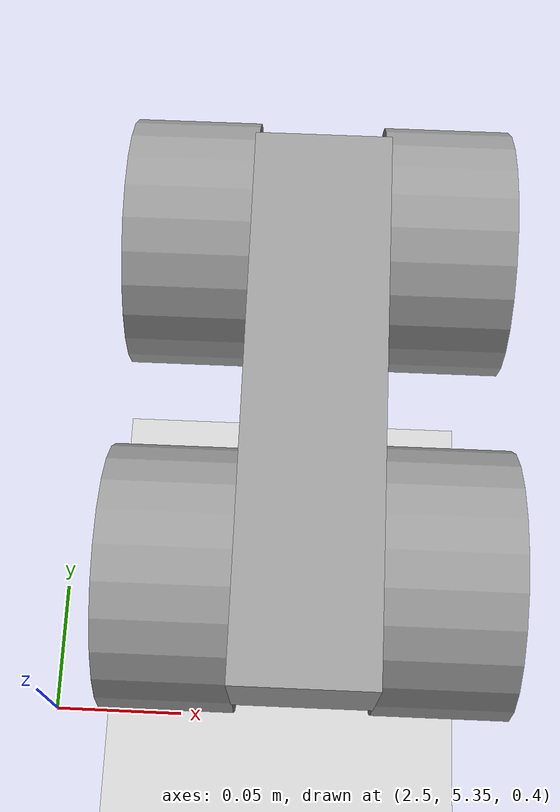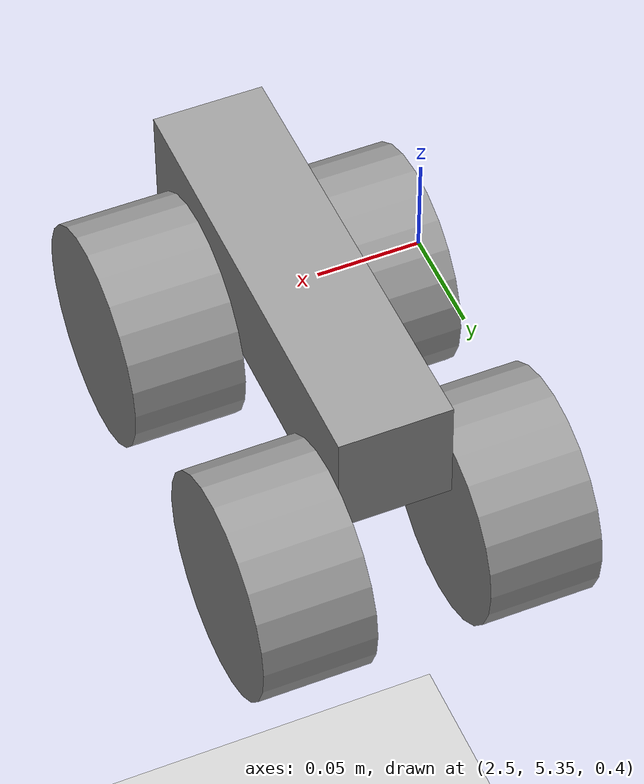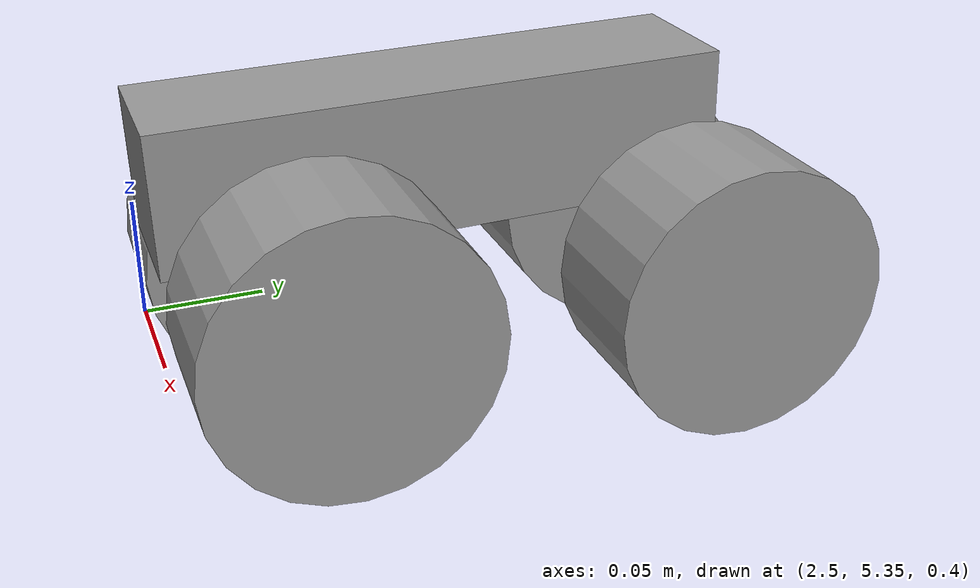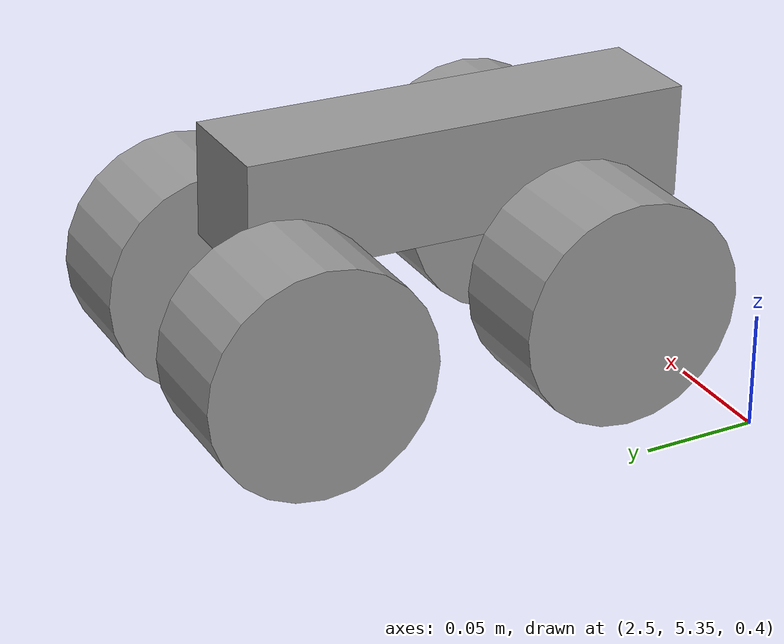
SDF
<sdf version="1.6">
 <world name="default">
  <model name="ground_plane">
   <static>1</static>
   <link name="link">
    <collision name="collision">
     <geometry><plane><normal>0 0 1</normal><size>100 100</size></plane></geometry>
     <surface>
      <contact><collide_bitmask>65535</collide_bitmask></contact>
      <friction><ode><mu>100</mu><mu2>50</mu2></ode></friction>
     </surface>
    </collision>
    <visual name="visual">
     <cast_shadows>0</cast_shadows>
     <geometry><plane><normal>0 0 1</normal><size>100 100</size></plane></geometry>
     <material>
      <script><uri>file://media/materials/scripts/gazebo.material</uri><name>Gazebo/Grey</name></script>
     </material>
    </visual>
   </link>
  </model>
  <model name="oscar_clone">
   <link name="link_1">
    <inertial>
     <mass>1</mass>
     <inertia><ixx>0.145833</ixx><ixy>0</ixy><ixz>0</ixz><iyy>0.145833</iyy><iyz>0</iyz><izz>0.125</izz></inertia>
    </inertial>
    <pose>-0.030984 -0.02472 0.043 0 -1.57079 0</pose>
    <visual name="visual">
     <geometry><cylinder><radius>0.05</radius><length>0.05</length></cylinder></geometry>
     <material>
      <lighting>1</lighting>
      <script><uri>file://media/materials/scripts/gazebo.material</uri><name>Gazebo/Grey</name></script>
      <shader type="pixel"><normal_map>__default__</normal_map></shader>
      <ambient>0.3 0.3 0.3 1</ambient>
      <diffuse>0.7 0.7 0.7 1</diffuse>
      <specular>0.01 0.01 0.01 1</specular>
      <emissive>0 0 0 1</emissive>
     </material>
    </visual>
    <collision name="collision">
     <geometry><cylinder><radius>0.05</radius><length>0.05</length></cylinder></geometry>
     <surface>
      <friction>
       <ode><mu>1</mu><mu2>1</mu2><fdir1>0 0 0</fdir1><slip1>0</slip1><slip2>0</slip2></ode>
       <torsional>
        <coefficient>1</coefficient>
        <patch_radius>0</patch_radius>
        <surface_radius>0</surface_radius>
        <use_patch_radius>1</use_patch_radius>
        <ode><slip>0</slip></ode>
       </torsional>
      </friction>
      <bounce><restitution_coefficient>0</restitution_coefficient><threshold>1e+06</threshold></bounce>
      <contact>
       <collide_without_contact>0</collide_without_contact>
       <collide_without_contact_bitmask>1</collide_without_contact_bitmask>
       <collide_bitmask>1</collide_bitmask>
       <ode>
        <soft_cfm>0</soft_cfm>
        <soft_erp>0.2</soft_erp>
        <kp>1e+13</kp>
        <kd>1</kd>
        <max_vel>0.01</max_vel>
        <min_depth>0</min_depth>
       </ode>
       <bullet>
        <split_impulse>1</split_impulse>
        <split_impulse_penetration_threshold>-0.01</split_impulse_penetration_threshold>
        <soft_cfm>0</soft_cfm>
        <soft_erp>0.2</soft_erp>
        <kp>1e+13</kp>
        <kd>1</kd>
       </bullet>
      </contact>
     </surface>
    </collision>
   </link>
   <link name="link_1_clone">
    <inertial>
     <mass>1</mass>
     <inertia><ixx>0.145833</ixx><ixy>0</ixy><ixz>0</ixz><iyy>0.145833</iyy><iyz>0</iyz><izz>0.125</izz></inertia>
    </inertial>
    <pose>-0.030984 0.115279 0.043 0 -1.57079 0</pose>
    <visual name="visual">
     <geometry><cylinder><radius>0.05</radius><length>0.05</length></cylinder></geometry>
     <material>
      <lighting>1</lighting>
      <script><uri>file://media/materials/scripts/gazebo.material</uri><name>Gazebo/Grey</name></script>
      <shader type="pixel"><normal_map>__default__</normal_map></shader>
      <ambient>0.3 0.3 0.3 1</ambient>
      <diffuse>0.7 0.7 0.7 1</diffuse>
      <specular>0.01 0.01 0.01 1</specular>
      <emissive>0 0 0 1</emissive>
     </material>
    </visual>
    <collision name="collision">
     <geometry><cylinder><radius>0.05</radius><length>0.05</length></cylinder></geometry>
     <surface>
      <friction>
       <ode><mu>1</mu><mu2>1</mu2><fdir1>0 0 0</fdir1><slip1>0</slip1><slip2>0</slip2></ode>
       <torsional>
        <coefficient>1</coefficient>
        <patch_radius>0</patch_radius>
        <surface_radius>0</surface_radius>
        <use_patch_radius>1</use_patch_radius>
        <ode><slip>0</slip></ode>
       </torsional>
      </friction>
      <bounce><restitution_coefficient>0</restitution_coefficient><threshold>1e+06</threshold></bounce>
      <contact>
       <collide_without_contact>0</collide_without_contact>
       <collide_without_contact_bitmask>1</collide_without_contact_bitmask>
       <collide_bitmask>1</collide_bitmask>
       <ode>
        <soft_cfm>0</soft_cfm>
        <soft_erp>0.2</soft_erp>
        <kp>1e+13</kp>
        <kd>1</kd>
        <max_vel>0.01</max_vel>
        <min_depth>0</min_depth>
       </ode>
       <bullet>
        <split_impulse>1</split_impulse>
        <split_impulse_penetration_threshold>-0.01</split_impulse_penetration_threshold>
        <soft_cfm>0</soft_cfm>
        <soft_erp>0.2</soft_erp>
        <kp>1e+13</kp>
        <kd>1</kd>
       </bullet>
      </contact>
     </surface>
    </collision>
   </link>
   <link name="link_2">
    <inertial>
     <mass>1</mass>
     <inertia>
      <ixx>0.166667</ixx>
      <ixy>0</ixy>
      <ixz>0</ixz>
      <iyy>0.166667</iyy>
      <iyz>0</iyz>
      <izz>0.166667</izz>
     </inertia>
     <pose>0 0 0.05 0 -0 0</pose>
    </inertial>
    <pose>0.019016 0.025279 0.093 0 -0 0</pose>
    <visual name="visual">
     <geometry><box><size>0.05 0.2 0.05</size></box></geometry>
     <material>
      <lighting>1</lighting>
      <script><uri>file://media/materials/scripts/gazebo.material</uri><name>Gazebo/Grey</name></script>
      <shader type="pixel"><normal_map>__default__</normal_map></shader>
      <ambient>0.3 0.3 0.3 1</ambient>
      <diffuse>0.7 0.7 0.7 1</diffuse>
      <specular>0.01 0.01 0.01 1</specular>
      <emissive>0 0 0 1</emissive>
     </material>
    </visual>
    <collision name="collision">
     <geometry><box><size>1 1 1</size></box></geometry>
     <surface>
      <friction>
       <ode><mu>1</mu><mu2>1</mu2><fdir1>0 0 0</fdir1><slip1>0</slip1><slip2>0</slip2></ode>
       <torsional>
        <coefficient>1</coefficient>
        <patch_radius>0</patch_radius>
        <surface_radius>0</surface_radius>
        <use_patch_radius>1</use_patch_radius>
        <ode><slip>0</slip></ode>
       </torsional>
      </friction>
      <bounce><restitution_coefficient>0</restitution_coefficient><threshold>1e+06</threshold></bounce>
      <contact>
       <collide_without_contact>0</collide_without_contact>
       <collide_without_contact_bitmask>1</collide_without_contact_bitmask>
       <collide_bitmask>1</collide_bitmask>
       <ode>
        <soft_cfm>0</soft_cfm>
        <soft_erp>0.2</soft_erp>
        <kp>1e+13</kp>
        <kd>1</kd>
        <max_vel>0.01</max_vel>
        <min_depth>0</min_depth>
       </ode>
       <bullet>
        <split_impulse>1</split_impulse>
        <split_impulse_penetration_threshold>-0.01</split_impulse_penetration_threshold>
        <soft_cfm>0</soft_cfm>
        <soft_erp>0.2</soft_erp>
        <kp>1e+13</kp>
        <kd>1</kd>
       </bullet>
      </contact>
     </surface>
    </collision>
   </link>
   <link name="link_3">
    <inertial>
     <mass>1</mass>
     <inertia><ixx>0.145833</ixx><ixy>0</ixy><ixz>0</ixz><iyy>0.145833</iyy><iyz>0</iyz><izz>0.125</izz></inertia>
    </inertial>
    <pose>0.069016 -0.024721 0.053 0 1.5707 0</pose>
    <visual name="visual">
     <geometry><cylinder><radius>0.05</radius><length>0.05</length></cylinder></geometry>
     <material>
      <lighting>1</lighting>
      <script><uri>file://media/materials/scripts/gazebo.material</uri><name>Gazebo/Grey</name></script>
      <shader type="pixel"><normal_map>__default__</normal_map></shader>
      <ambient>0.3 0.3 0.3 1</ambient>
      <diffuse>0.7 0.7 0.7 1</diffuse>
      <specular>0.01 0.01 0.01 1</specular>
      <emissive>0 0 0 1</emissive>
     </material>
    </visual>
    <collision name="collision">
     <geometry><cylinder><radius>0.05</radius><length>0.05</length></cylinder></geometry>
     <surface>
      <friction>
       <ode><mu>1</mu><mu2>1</mu2><fdir1>0 0 0</fdir1><slip1>0</slip1><slip2>0</slip2></ode>
       <torsional>
        <coefficient>1</coefficient>
        <patch_radius>0</patch_radius>
        <surface_radius>0</surface_radius>
        <use_patch_radius>1</use_patch_radius>
        <ode><slip>0</slip></ode>
       </torsional>
      </friction>
      <bounce><restitution_coefficient>0</restitution_coefficient><threshold>1e+06</threshold></bounce>
      <contact>
       <collide_without_contact>0</collide_without_contact>
       <collide_without_contact_bitmask>1</collide_without_contact_bitmask>
       <collide_bitmask>1</collide_bitmask>
       <ode>
        <soft_cfm>0</soft_cfm>
        <soft_erp>0.2</soft_erp>
        <kp>1e+13</kp>
        <kd>1</kd>
        <max_vel>0.01</max_vel>
        <min_depth>0</min_depth>
       </ode>
       <bullet>
        <split_impulse>1</split_impulse>
        <split_impulse_penetration_threshold>-0.01</split_impulse_penetration_threshold>
        <soft_cfm>0</soft_cfm>
        <soft_erp>0.2</soft_erp>
        <kp>1e+13</kp>
        <kd>1</kd>
       </bullet>
      </contact>
     </surface>
    </collision>
   </link>
   <link name="link_3_clone">
    <inertial>
     <mass>1</mass>
     <inertia><ixx>0.145833</ixx><ixy>0</ixy><ixz>0</ixz><iyy>0.145833</iyy><iyz>0</iyz><izz>0.125</izz></inertia>
    </inertial>
    <pose>0.069016 0.115274 0.043 1.5708 -1.5707 1.5708</pose>
    <visual name="visual">
     <geometry><cylinder><radius>0.05</radius><length>0.05</length></cylinder></geometry>
     <material>
      <lighting>1</lighting>
      <script><uri>file://media/materials/scripts/gazebo.material</uri><name>Gazebo/Grey</name></script>
      <shader type="pixel"><normal_map>__default__</normal_map></shader>
      <ambient>0.3 0.3 0.3 1</ambient>
      <diffuse>0.7 0.7 0.7 1</diffuse>
      <specular>0.01 0.01 0.01 1</specular>
      <emissive>0 0 0 1</emissive>
     </material>
    </visual>
    <collision name="collision">
     <geometry><cylinder><radius>0.05</radius><length>0.05</length></cylinder></geometry>
     <surface>
      <friction>
       <ode><mu>1</mu><mu2>1</mu2><fdir1>0 0 0</fdir1><slip1>0</slip1><slip2>0</slip2></ode>
       <torsional>
        <coefficient>1</coefficient>
        <patch_radius>0</patch_radius>
        <surface_radius>0</surface_radius>
        <use_patch_radius>1</use_patch_radius>
        <ode><slip>0</slip></ode>
       </torsional>
      </friction>
      <bounce><restitution_coefficient>0</restitution_coefficient><threshold>1e+06</threshold></bounce>
      <contact>
       <collide_without_contact>0</collide_without_contact>
       <collide_without_contact_bitmask>1</collide_without_contact_bitmask>
       <collide_bitmask>1</collide_bitmask>
       <ode>
        <soft_cfm>0</soft_cfm>
        <soft_erp>0.2</soft_erp>
        <kp>1e+13</kp>
        <kd>1</kd>
        <max_vel>0.01</max_vel>
        <min_depth>0</min_depth>
       </ode>
       <bullet>
        <split_impulse>1</split_impulse>
        <split_impulse_penetration_threshold>-0.01</split_impulse_penetration_threshold>
        <soft_cfm>0</soft_cfm>
        <soft_erp>0.2</soft_erp>
        <kp>1e+13</kp>
        <kd>1</kd>
       </bullet>
      </contact>
     </surface>
    </collision>
   </link>
   <joint name="link_2_JOINT_18" type="revolute">
    <parent>link_2</parent>
    <child>link_3</child>
    <axis>
     <xyz>0 0 1</xyz>
     <use_parent_model_frame>0</use_parent_model_frame>
     <limit>
      <lower>-1.79769e+308</lower>
      <upper>1.79769e+308</upper>
      <effort>-1</effort>
      <velocity>-1</velocity>
     </limit>
     <dynamics>
      <spring_reference>0</spring_reference>
      <spring_stiffness>0</spring_stiffness>
      <damping>0</damping>
     </dynamics>
    </axis>
    <physics>
     <ode><limit><cfm>0</cfm><erp>0.2</erp></limit><suspension><cfm>0</cfm><erp>0.2</erp></suspension></ode>
    </physics>
   </joint>
   <joint name="link_2_JOINT_20" type="revolute">
    <parent>link_2</parent>
    <child>link_3_clone</child>
    <axis>
     <xyz>0 0 1</xyz>
     <use_parent_model_frame>0</use_parent_model_frame>
     <limit>
      <lower>-1.79769e+308</lower>
      <upper>1.79769e+308</upper>
      <effort>-1</effort>
      <velocity>-1</velocity>
     </limit>
     <dynamics>
      <spring_reference>0</spring_reference>
      <spring_stiffness>0</spring_stiffness>
      <damping>0</damping>
     </dynamics>
    </axis>
    <physics>
     <ode><limit><cfm>0</cfm><erp>0.2</erp></limit><suspension><cfm>0</cfm><erp>0.2</erp></suspension></ode>
    </physics>
   </joint>
   <joint name="link_2_JOINT_5" type="revolute">
    <parent>link_2</parent>
    <child>link_1</child>
    <axis>
     <xyz>0 0 1</xyz>
     <use_parent_model_frame>0</use_parent_model_frame>
     <limit>
      <lower>-1.79769e+308</lower>
      <upper>1.79769e+308</upper>
      <effort>-1</effort>
      <velocity>-1</velocity>
     </limit>
     <dynamics>
      <spring_reference>0</spring_reference>
      <spring_stiffness>0</spring_stiffness>
      <damping>0</damping>
      <friction>0</friction>
     </dynamics>
    </axis>
    <physics>
     <ode><limit><cfm>0</cfm><erp>0.2</erp></limit><suspension><cfm>0</cfm><erp>0.2</erp></suspension></ode>
    </physics>
   </joint>
   <joint name="link_2_JOINT_6" type="revolute">
    <parent>link_2</parent>
    <child>link_1_clone</child>
    <axis>
     <xyz>0 0 1</xyz>
     <use_parent_model_frame>0</use_parent_model_frame>
     <limit>
      <lower>-1.79769e+308</lower>
      <upper>1.79769e+308</upper>
      <effort>-1</effort>
      <velocity>-1</velocity>
     </limit>
     <dynamics>
      <spring_reference>0</spring_reference>
      <spring_stiffness>0</spring_stiffness>
      <damping>0</damping>
      <friction>0</friction>
     </dynamics>
    </axis>
    <physics>
     <ode><limit><cfm>0</cfm><erp>0.2</erp></limit><suspension><cfm>0</cfm><erp>0.2</erp></suspension></ode>
    </physics>
   </joint>
   <static>0</static>
   <pose>2.5792 5.42019 0.407504 0.020196 -0 -0.000624</pose>
  </model>
 </world>
</sdf>
